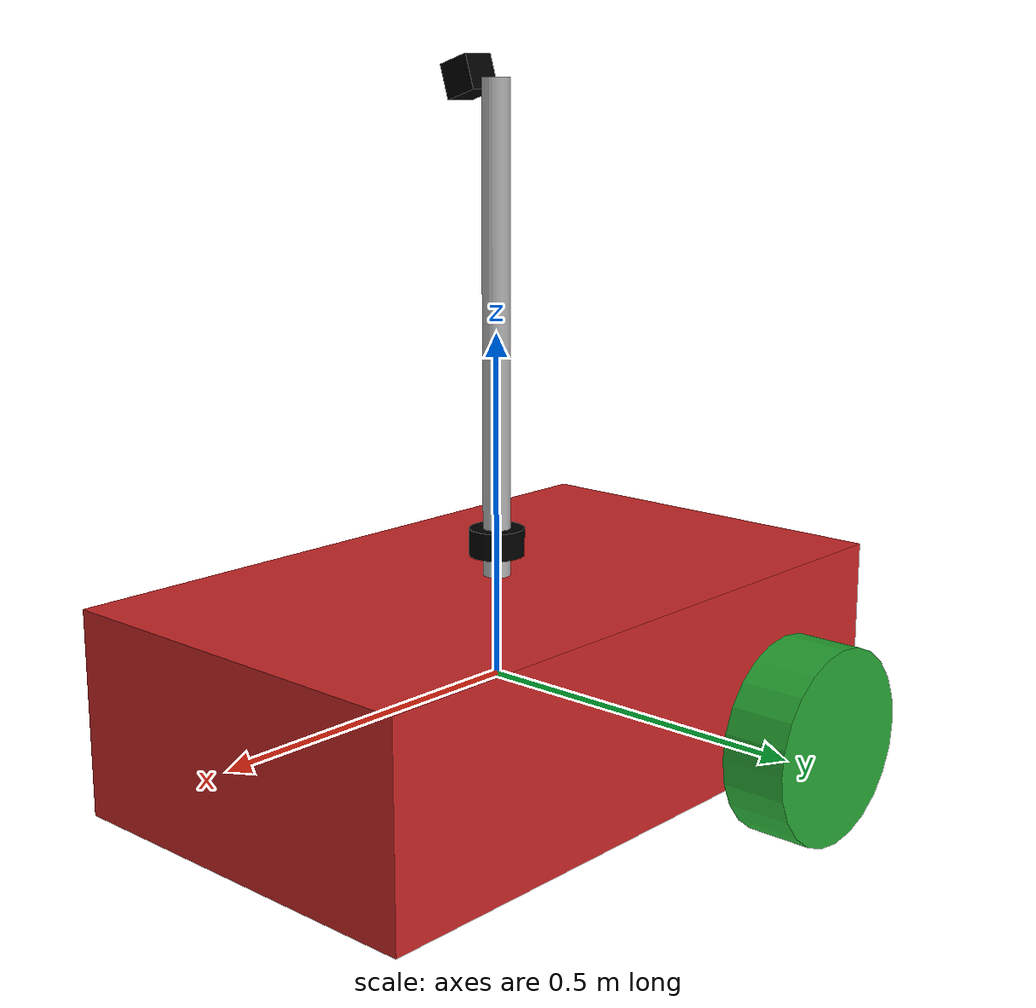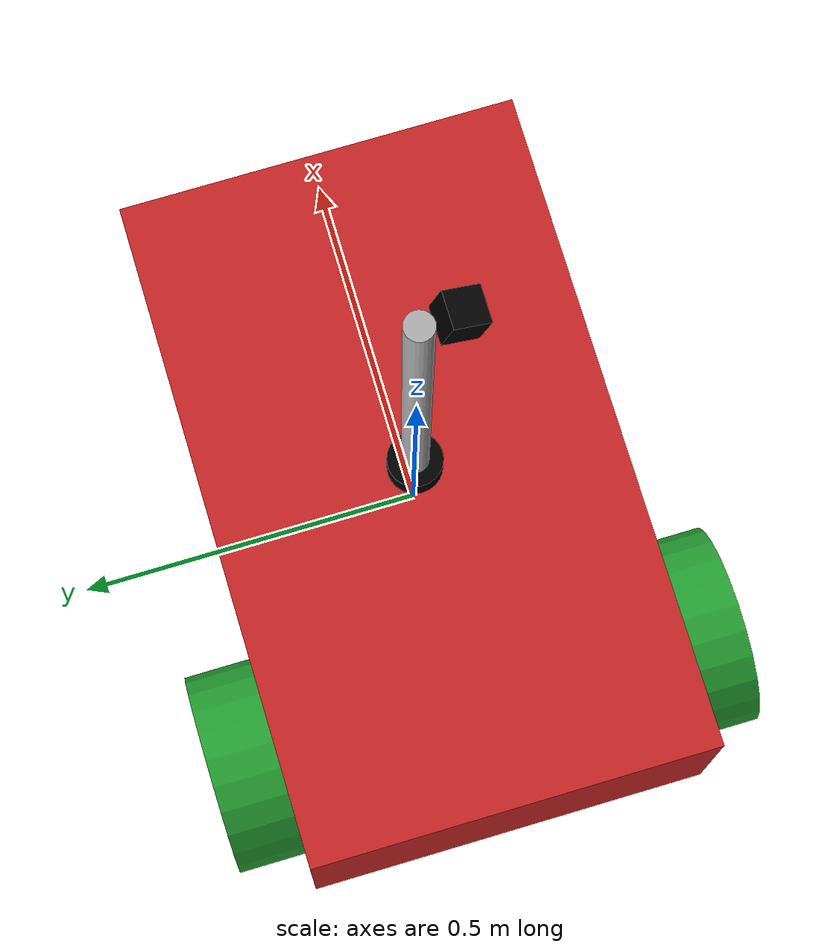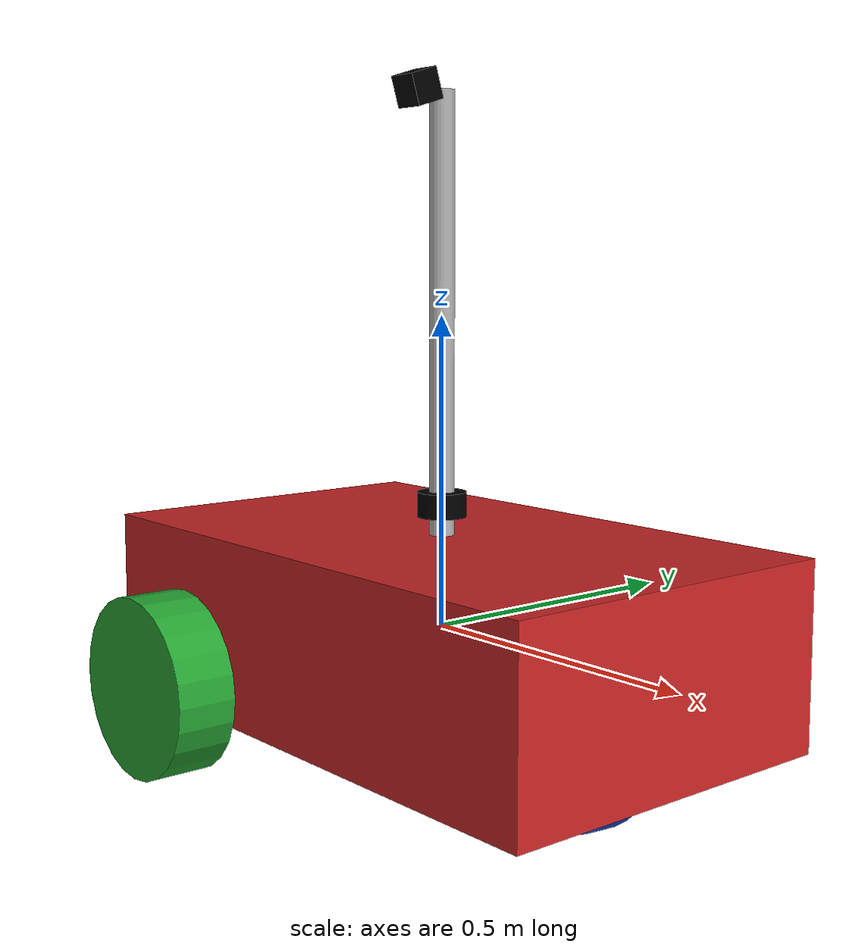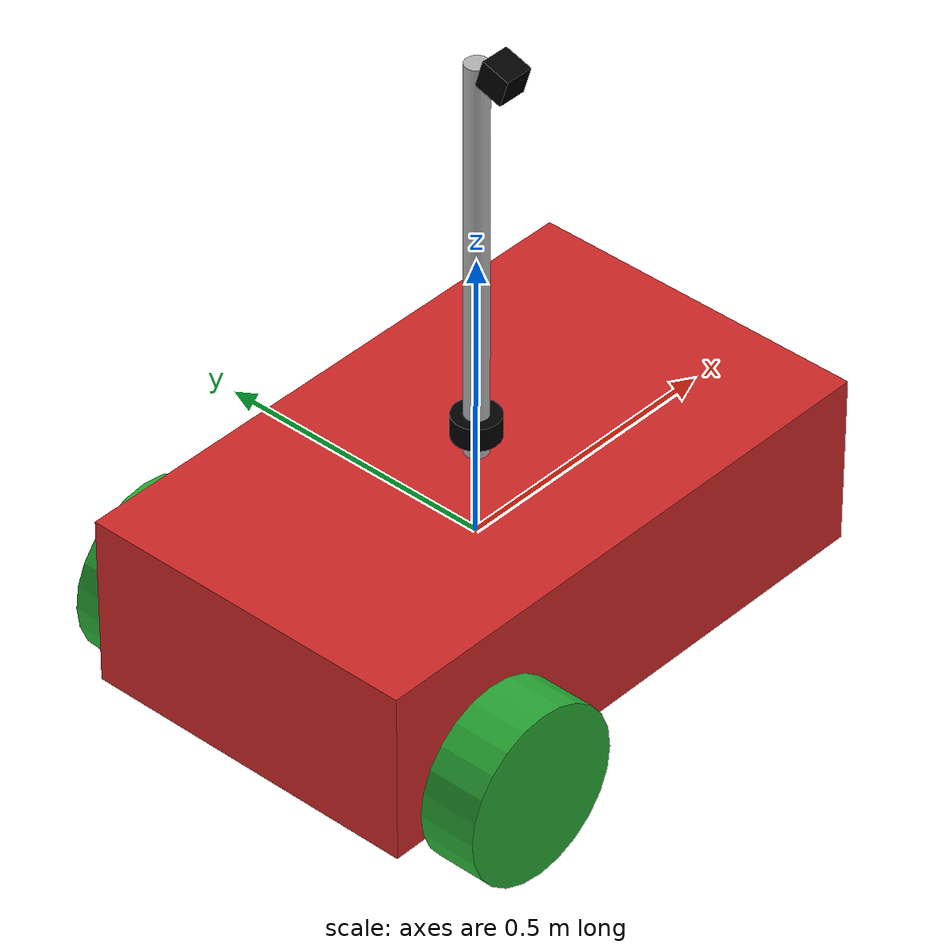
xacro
<?xml version="1.0"?>
<!-- bodhini@jain-->
<!-- URDF DESCRIPTION OF THE DIFFERENTIAL DRIVE     -->
<robot name="differential_drive_robot" xmlns:xacro="http://www.ros.org/wiki/xacro">
<!-- Body dimensions -->
<xacro:property name="body_link_x_dim" value="1"/>
<xacro:property name="body_link_y_dim" value="0.6"/>
<xacro:property name="body_link_z_dim" value="0.3"/>
<!-- Wheel  -->
<xacro:property name="wheel_link_radius" value="0.15"/>
<xacro:property name="wheel_link_length" value="0.1"/>
<xacro:property name="wheel_link_z_location" value="-0.1"/>
<!-- Caster Sphere -->
<xacro:property name="caster_link_radius" value="0.15"/>
<xacro:property name="caster_link_z_location" value="-0.1"/>
<!-- Material Density -->
<xacro:property name="body_density" value="2710.0"/>
<xacro:property name="wheel_density" value="2710.0"/>
<xacro:property name="caster_density" value="2710.0"/>
<!-- Pi Constant -->
<xacro:property name="pi_constant" value="3.1459265"/>
<!-- Robot Mass -->
<xacro:property name="body_mass" value="${body_density*body_link_x_dim*body_link_y_dim*body_link_z_dim}"/>
<xacro:property name="wheel_mass" value="${wheel_density*wheel_link_radius*wheel_link_radius*pi_constant*wheel_link_length}"/>
<xacro:property name="caster_mass" value="${caster_density*(4.0/3.0)*pi_constant*caster_link_radius*caster_link_radius*caster_link_radius}"/>
<!-- Moments of Inertia of wheel -->
<xacro:property name="Iz_wheel" value="${wheel_mass*wheel_link_radius*wheel_link_radius}" />
<xacro:property name="I_wheel" value="${(1.0/12.0)*wheel_mass*(3.0*wheel_link_radius*wheel_link_radius+wheel_link_length)}" />
<!-- Moments of Inertia of caster sphere -->
<xacro:property name="I_caster" value="${(2.0/5.0)*caster_mass*caster_link_radius*caster_link_radius}" />

<!-- Complete Inertial Section of wheel -->
<xacro:macro name="inertia_wheel">
    <inertial>    <origin rpy="0 0 0" xyz="0 0 0"/>
    <mass value="${wheel_mass}"/>
    <inertia ixx="${I_wheel}" ixy="0.0" ixz="0.0" iyy="${I_wheel}" iyz="0" izz="${Iz_wheel}"/>
    </inertial>
</xacro:macro>
<!-- Complete Inertial Section of caster sphere -->
<xacro:macro name="inertia_caster">
    <inertial>
    <origin rpy="0 0 0" xyz="0 0 0"/>
    <mass value="${caster_mass}"/>
    <inertia ixx="${I_caster}" ixy="0.0" ixz="0.0" iyy="${I_caster}" iyz="0" izz="${I_caster}"/>
    </inertial>
</xacro:macro>

<!-- Gazebo points and motion control driver -->
<xacro:include filename="$(find mobile_dd_robot)/model/robot.gazebo" />

<!-- LINKS AND JOINTS -->
<link name="dummy">
</link>
<joint name="dummy_joint" type="fixed">
    <parent link="dummy"/>
    <child link="body_link" />

</joint>

<!-- BODY LINK -->
<link name="body_link">
    <visual>
        <geometry>
            <box size="${body_link_x_dim} ${body_link_y_dim} ${body_link_z_dim}" />
        </geometry>
    <origin rpy="0 0 0" xyz="0 0 0"/>
    </visual>

    <collision>
        <geometry>
            <box size="${body_link_x_dim} ${body_link_y_dim} ${body_link_z_dim}" />
        </geometry>
    <origin rpy="0 0 0" xyz="0 0 0"/>
    </collision>

    <inertial>
         <origin rpy="0 0 0" xyz="0 0 0"/>
         <mass value="${body_mass}"/>
    <inertia
    ixx="${(1/12)*body_mass*(body_link_y_dim*body_link_y_dim+body_link_z_dim*body_link_z_dim)}" ixy="0"     ixz="0" iyy="${(1/12)*body_mass*(body_link_x_dim*body_link_x_dim+body_link_z_dim*body_link_z_dim)}" iyz="0"
    izz="${(1/12)*body_mass*(body_link_y_dim*body_link_y_dim+body_link_x_dim*body_link_x_dim)}" />
    </inertial>
</link>

<!-- RIGHT WHEEL AND JOINT -->
<joint name="wheel1_joint" type="continuous">
    <parent link= "body_link"/>
    <child link="wheel1_link" />
    <origin xyz="${-2*wheel_link_radius} ${-body_link_y_dim/2-wheel_link_length/2} ${wheel_link_z_location}" rpy="0 0 0"/>
    <axis xyz="0 1 0"/>
    <limit effort="1000" velocity="1000"/>
    <dynamics damping="1.0" friction="1.0"/>
</joint>
<link name="wheel1_link">
    <visual>
        <origin rpy="1.570795 0 0" xyz="0 0 0"/>
        <geometry>
            <cylinder length="${wheel_link_length}" radius="${wheel_link_radius}" />
        </geometry>
    </visual>

    <collision>
        <origin rpy="1.570795 0 0" xyz="0 0 0"/>
        <geometry>
            <cylinder length="${wheel_link_length}" radius="${wheel_link_radius}" />
        </geometry>
    </collision>
    <xacro:inertia_wheel />
</link>

<!-- BACK LEFT WHEEL -->
<joint name="wheel2_joint" type="continuous">
    <parent link= "body_link"/>
    <child link="wheel2_link" />
    <origin xyz="${-2*wheel_link_radius} ${body_link_y_dim/2+wheel_link_length/2} ${wheel_link_z_location}" rpy="0 0 0"/>
    <axis xyz="0 1 0"/>
    <limit effort="1000" velocity="1000"/>
    <dynamics damping="1.0" friction="1.0"/>
</joint>
<link name="wheel2_link">
    <visual>
        <origin rpy="1.570795 0 0" xyz="0 0 0"/>
        <geometry>
            <cylinder length="${wheel_link_length}" radius="${wheel_link_radius}" />
        </geometry>
    </visual>

    <collision>
        <origin rpy="1.570795 0 0" xyz="0 0 0"/>
        <geometry>
            <cylinder length="${wheel_link_length}" radius="${wheel_link_radius}" />
        </geometry>
    </collision>
    <xacro:inertia_wheel />
</link>

<!-- CASTER SPHERE -->
<joint name="caster_joint" type="fixed">
    <parent link= "body_link"/>
    <child link="caster_link" />
    <origin xyz="${2*caster_link_radius} 0 ${caster_link_z_location}" rpy="0 0 0"/>
</joint>

<link name="caster_link">
    <visual>
        <origin rpy="0 0 0" xyz="0 0 0"/>
        <geometry>
            <sphere radius="${caster_link_radius}" />
        </geometry>
    </visual>

    <collision>
        <origin rpy="0 0 0" xyz="0 0 0"/>
        <geometry>
            <sphere radius="${caster_link_radius}" />
        </geometry>
    </collision>
    <xacro:inertia_caster />
</link>
<!-- LIDAR-->
<link name="lidar_link">
    <visual>
        <origin rpy="0 0 0" xyz="0 0 0"/>
        <geometry>
            <cylinder length="0.04" radius="0.04" />
        </geometry>
        <material name="lidar_material">
            <color rgba="0.0 0.0 0.0 1.0"/>
        </material>
    </visual>

    <collision>
        <origin rpy="0 0 0" xyz="0 0 0"/>
        <geometry>
            <cylinder length="0.04" radius="0.04" />
        </geometry>
    </collision>

    <inertial>
        <origin rpy="0 0 0" xyz="0 0 0"/>
        <mass value="0.1"/>
        <inertia ixx="0.000001" ixy="0" ixz="0" iyy="0.000001" iyz="0" izz="0.000001" />
    </inertial>
</link>

<!-- LIDAR JOINT (mounted on top of body) -->
<joint name="lidar_joint" type="fixed">
    <parent link="body_link"/>
    <child link="lidar_link" />
    <origin xyz="0 0 ${body_link_z_dim/2 + 0.05}" rpy="0 0 0"/>
</joint>
<!-- CAMERA MAST -->

<link name="camera_mast_link">

    <visual>
        <origin xyz="0 0 0.3" rpy="0 0 0"/>

        <geometry>
            <cylinder radius="0.02" length="0.8"/>
        </geometry>

        <material name="mast_material">
            <color rgba="0.7 0.7 0.7 1.0"/>
        </material>
    </visual>

    <collision>
        <origin xyz="0 0 0.3" rpy="0 0 0"/>

        <geometry>
            <cylinder radius="0.02" length="0.8"/>
        </geometry>
    </collision>

    <inertial>
        <origin xyz="0 0 0.3" rpy="0 0 0"/>

        <mass value="0.2"/>

        <inertia
            ixx="0.001"
            ixy="0"
            ixz="0"
            iyy="0.001"
            iyz="0"
            izz="0.001"/>
    </inertial>

</link>
<!-- CAMERA MAST JOINT -->

<joint name="camera_mast_joint" type="fixed">

    <parent link="body_link"/>

    <child link="camera_mast_link"/>

    <origin xyz="0 0 ${body_link_z_dim/2}" rpy="0 0 -1.5708"/>

</joint>
<link name="camera_link">
    <visual>
        <origin rpy="0 0 0" xyz="0 0 0"/>
        <geometry>
            <box size="0.05 0.05 0.05"/>
        </geometry>
        <material name="camera_material">
            <color rgba="0.0 0.0 0.0 1.0"/>
        </material>
    </visual>

    <collision>
        <origin rpy="0 0 0" xyz="0 0 0"/>
        <geometry>
            <box size="0.05 0.05 0.05"/>
        </geometry>
    </collision>

    <inertial>
        <origin rpy="0 0 0" xyz="0 0 0"/>
        <mass value="0.1"/>
        <inertia ixx="0.000001" ixy="0" ixz="0" iyy="0.000001" iyz="0" izz="0.000001"/>
    </inertial>
</link>

<!-- CAMERA JOINT -->
<joint name="camera_joint" type="fixed">
    <parent link="camera_mast_link"/>
    <child link="camera_link"/>
    <origin xyz="0.05 0 0.7" rpy="0.0 0.3 0"/>
</joint>

<!-- END -->

</robot>
